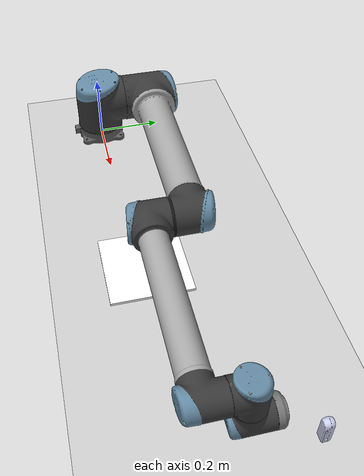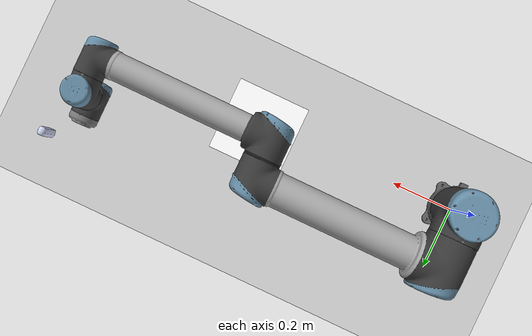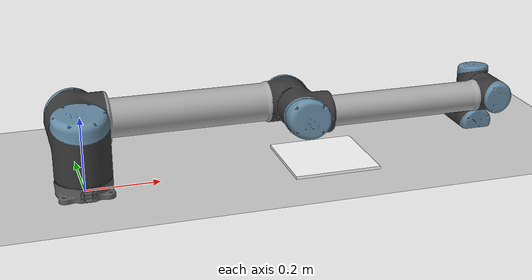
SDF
<sdf version="1.7">
 <world name="default">
  <light name="sun" type="directional">
   <pose>0 0 10 0 -0 0</pose>
   <diffuse>0.8 0.8 0.8 1</diffuse>
   <specular>0.2 0.2 0.2 1</specular>
   <attenuation>
    <range>1000</range>
    <constant>0.9</constant>
    <linear>0.01</linear>
    <quadratic>0.001</quadratic>
   </attenuation>
   <direction>-0.5 0.1 -0.9</direction>
   <spot><inner_angle>0</inner_angle><outer_angle>0</outer_angle><falloff>0</falloff></spot>
  </light>
  <model name="ground_plane">
   <static>1</static>
   <link name="link">
    <collision name="collision">
     <geometry><plane><normal>0 0 1</normal><size>100 100</size></plane></geometry>
     <surface><friction><ode><mu>100</mu><mu2>50</mu2></ode></friction></surface>
    </collision>
    <visual name="visual">
     <cast_shadows>0</cast_shadows>
     <geometry><plane><normal>0 0 1</normal><size>100 100</size></plane></geometry>
     <material>
      <script><uri>file://media/materials/scripts/gazebo.material</uri><name>Gazebo/Grey</name></script>
     </material>
    </visual>
   </link>
  </model>
  <gravity>0 0 -9.8</gravity>
  <magnetic_field>6e-06 2.3e-05 -4.2e-05</magnetic_field>
  <atmosphere type="adiabatic"/>
  <physics type="ode">
   <max_step_size>0.001</max_step_size>
   <real_time_factor>1</real_time_factor>
   <real_time_update_rate>1000</real_time_update_rate>
  </physics>
  <scene><ambient>0.4 0.4 0.4 1</ambient><background>0.7 0.7 0.7 1</background><shadows>1</shadows></scene>
  <audio><device>default</device></audio>
  <spherical_coordinates>
   <surface_model>EARTH_WGS84</surface_model>
   <latitude_deg>0</latitude_deg>
   <longitude_deg>0</longitude_deg>
   <elevation>0</elevation>
   <heading_deg>0</heading_deg>
  </spherical_coordinates>
  <model name="ur10_robot">
   <joint name="virtual_joint" type="fixed">
    <pose relative_to="__model__">0 0 0 0 -0 0</pose>
    <parent>world</parent>
    <child>base_link</child>
   </joint>
   <link name="base_link">
    <pose relative_to="virtual_joint">0 0 0 0 -0 0</pose>
    <inertial>
     <mass>4</mass>
     <inertia>
      <ixx>0.00610633</ixx>
      <ixy>0</ixy>
      <ixz>0</ixz>
      <iyy>0.00610633</iyy>
      <iyz>0</iyz>
      <izz>0.01125</izz>
     </inertia>
    </inertial>
    <collision name="base_link_inertia_collision">
     <geometry>
      <mesh>
       <scale>1 1 1</scale>
       <uri>file:///home/p/ws_demo2/install/ur_description/share/ur_description/meshes/ur10/collision/base.stl</uri>
      </mesh>
     </geometry>
    </collision>
    <visual name="base_link_inertia_visual">
     <geometry>
      <mesh>
       <scale>1 1 1</scale>
       <uri>file:///home/p/ws_demo2/install/ur_description/share/ur_description/meshes/ur10/visual/base.dae</uri>
      </mesh>
     </geometry>
    </visual>
    <gravity>0</gravity>
   </link>
   <joint name="shoulder_pan_joint" type="revolute">
    <pose relative_to="base_link">0 0 0.1273 0 -0 3.14159</pose>
    <parent>base_link</parent>
    <child>shoulder_link</child>
    <axis>
     <xyz>0 0 1</xyz>
     <limit><lower>-6.28319</lower><upper>6.28319</upper><effort>330</effort><velocity>2.0944</velocity></limit>
     <dynamics>
      <damping>0</damping>
      <friction>0</friction>
      <spring_reference>0</spring_reference>
      <spring_stiffness>0</spring_stiffness>
     </dynamics>
    </axis>
    <physics>
     <provide_feedback>0</provide_feedback>
     <ode>
      <implicit_spring_damper>1</implicit_spring_damper>
      <cfm_damping>1</cfm_damping>
      <limit><cfm>0</cfm><erp>0.2</erp></limit>
      <provide_feedback>0</provide_feedback>
     </ode>
    </physics>
   </joint>
   <link name="shoulder_link">
    <pose relative_to="shoulder_pan_joint">0 0 0 0 -0 0</pose>
    <inertial>
     <mass>7.778</mass>
     <inertia>
      <ixx>0.0314743</ixx>
      <ixy>0</ixy>
      <ixz>0</ixz>
      <iyy>0.0314743</iyy>
      <iyz>0</iyz>
      <izz>0.0218756</izz>
     </inertia>
    </inertial>
    <collision name="shoulder_link_collision">
     <pose>0 0 0 0 -0 3.14159</pose>
     <geometry>
      <mesh>
       <scale>1 1 1</scale>
       <uri>file:///home/p/ws_demo2/install/ur_description/share/ur_description/meshes/ur10/collision/shoulder.stl</uri>
      </mesh>
     </geometry>
     <surface><friction><ode><mu>0.61</mu><mu2>0.61</mu2></ode></friction></surface>
    </collision>
    <visual name="shoulder_link_visual">
     <pose>0 0 0 0 -0 3.14159</pose>
     <geometry>
      <mesh>
       <scale>1 1 1</scale>
       <uri>file:///home/p/ws_demo2/install/ur_description/share/ur_description/meshes/ur10/visual/shoulder.dae</uri>
      </mesh>
     </geometry>
    </visual>
    <gravity>0</gravity>
   </link>
   <joint name="shoulder_lift_joint" type="revolute">
    <pose relative_to="shoulder_link">0 0 0 1.5708 -0 0</pose>
    <parent>shoulder_link</parent>
    <child>upper_arm_link</child>
    <axis>
     <xyz>0 0 1</xyz>
     <limit><lower>-6.28319</lower><upper>6.28319</upper><effort>330</effort><velocity>2.0944</velocity></limit>
     <dynamics>
      <damping>0</damping>
      <friction>0</friction>
      <spring_reference>0</spring_reference>
      <spring_stiffness>0</spring_stiffness>
     </dynamics>
    </axis>
    <physics>
     <provide_feedback>0</provide_feedback>
     <ode>
      <implicit_spring_damper>1</implicit_spring_damper>
      <cfm_damping>1</cfm_damping>
      <limit><cfm>0</cfm><erp>0.2</erp></limit>
      <provide_feedback>0</provide_feedback>
     </ode>
    </physics>
   </joint>
   <link name="upper_arm_link">
    <pose relative_to="shoulder_lift_joint">0 0 0 0 -0 0</pose>
    <inertial>
     <pose>-0.306 0 0.175 3.14159 1.57079 3.14159</pose>
     <mass>12.93</mass>
     <inertia>
      <ixx>0.421754</ixx>
      <ixy>0</ixy>
      <ixz>0</ixz>
      <iyy>0.421754</iyy>
      <iyz>0</iyz>
      <izz>0.0363656</izz>
     </inertia>
    </inertial>
    <collision name="upper_arm_link_collision">
     <pose>0 0 0.220941 1.5708 0 -1.5708</pose>
     <geometry>
      <mesh>
       <scale>1 1 1</scale>
       <uri>file:///home/p/ws_demo2/install/ur_description/share/ur_description/meshes/ur10/collision/upperarm.stl</uri>
      </mesh>
     </geometry>
     <surface><friction><ode><mu>0.61</mu><mu2>0.61</mu2></ode></friction></surface>
    </collision>
    <visual name="upper_arm_link_visual">
     <pose>0 0 0.220941 1.5708 0 -1.5708</pose>
     <geometry>
      <mesh>
       <scale>1 1 1</scale>
       <uri>file:///home/p/ws_demo2/install/ur_description/share/ur_description/meshes/ur10/visual/upperarm.dae</uri>
      </mesh>
     </geometry>
    </visual>
    <gravity>0</gravity>
   </link>
   <joint name="elbow_joint" type="revolute">
    <pose relative_to="upper_arm_link">-0.612 0 0 0 -0 0</pose>
    <parent>upper_arm_link</parent>
    <child>forearm_link</child>
    <axis>
     <xyz>0 0 1</xyz>
     <limit><lower>-3.14159</lower><upper>3.14159</upper><effort>150</effort><velocity>3.14159</velocity></limit>
     <dynamics>
      <damping>0</damping>
      <friction>0</friction>
      <spring_reference>0</spring_reference>
      <spring_stiffness>0</spring_stiffness>
     </dynamics>
    </axis>
    <physics>
     <provide_feedback>0</provide_feedback>
     <ode>
      <implicit_spring_damper>1</implicit_spring_damper>
      <cfm_damping>1</cfm_damping>
      <limit><cfm>0</cfm><erp>0.2</erp></limit>
      <provide_feedback>0</provide_feedback>
     </ode>
    </physics>
   </joint>
   <link name="forearm_link">
    <pose relative_to="elbow_joint">0 0 0 0 -0 0</pose>
    <inertial>
     <pose>-0.28615 0 0.049042 3.14159 1.57079 3.14159</pose>
     <mass>3.87</mass>
     <inertia>
      <ixx>0.11107</ixx>
      <ixy>0</ixy>
      <ixz>0</ixz>
      <iyy>0.11107</iyy>
      <iyz>0</iyz>
      <izz>0.0108844</izz>
     </inertia>
    </inertial>
    <collision name="forearm_link_collision">
     <pose>0 0 0.049042 1.5708 0 -1.5708</pose>
     <geometry>
      <mesh>
       <scale>1 1 1</scale>
       <uri>file:///home/p/ws_demo2/install/ur_description/share/ur_description/meshes/ur10/collision/forearm.stl</uri>
      </mesh>
     </geometry>
     <surface><friction><ode><mu>0.61</mu><mu2>0.61</mu2></ode></friction></surface>
    </collision>
    <visual name="forearm_link_visual">
     <pose>0 0 0.049042 1.5708 0 -1.5708</pose>
     <geometry>
      <mesh>
       <scale>1 1 1</scale>
       <uri>file:///home/p/ws_demo2/install/ur_description/share/ur_description/meshes/ur10/visual/forearm.dae</uri>
      </mesh>
     </geometry>
    </visual>
    <gravity>0</gravity>
   </link>
   <joint name="wrist_1_joint" type="revolute">
    <pose relative_to="forearm_link">-0.5723 0 0.163941 0 -0 0</pose>
    <parent>forearm_link</parent>
    <child>wrist_1_link</child>
    <axis>
     <xyz>0 0 1</xyz>
     <limit><lower>-6.28319</lower><upper>6.28319</upper><effort>56</effort><velocity>3.14159</velocity></limit>
     <dynamics>
      <damping>0</damping>
      <friction>0</friction>
      <spring_reference>0</spring_reference>
      <spring_stiffness>0</spring_stiffness>
     </dynamics>
    </axis>
    <physics>
     <provide_feedback>0</provide_feedback>
     <ode>
      <implicit_spring_damper>1</implicit_spring_damper>
      <cfm_damping>1</cfm_damping>
      <limit><cfm>0</cfm><erp>0.2</erp></limit>
      <provide_feedback>0</provide_feedback>
     </ode>
    </physics>
   </joint>
   <link name="wrist_1_link">
    <pose relative_to="wrist_1_joint">0 0 0 0 -0 0</pose>
    <inertial>
     <mass>1.96</mass>
     <inertia>
      <ixx>0.00510825</ixx>
      <ixy>0</ixy>
      <ixz>0</ixz>
      <iyy>0.00510825</iyy>
      <iyz>0</iyz>
      <izz>0.0055125</izz>
     </inertia>
    </inertial>
    <collision name="wrist_1_link_collision">
     <pose>0 0 -0.1149 1.5708 -0 0</pose>
     <geometry>
      <mesh>
       <scale>1 1 1</scale>
       <uri>file:///home/p/ws_demo2/install/ur_description/share/ur_description/meshes/ur10/collision/wrist1.stl</uri>
      </mesh>
     </geometry>
     <surface><friction><ode><mu>0.61</mu><mu2>0.61</mu2></ode></friction></surface>
    </collision>
    <visual name="wrist_1_link_visual">
     <pose>0 0 -0.1149 1.5708 -0 0</pose>
     <geometry>
      <mesh>
       <scale>1 1 1</scale>
       <uri>file:///home/p/ws_demo2/install/ur_description/share/ur_description/meshes/ur10/visual/wrist1.dae</uri>
      </mesh>
     </geometry>
    </visual>
    <gravity>0</gravity>
   </link>
   <joint name="wrist_2_joint" type="revolute">
    <pose relative_to="wrist_1_link">0 -0.1157 -0 1.5708 -0 0</pose>
    <parent>wrist_1_link</parent>
    <child>wrist_2_link</child>
    <axis>
     <xyz>0 0 1</xyz>
     <limit><lower>-6.28319</lower><upper>6.28319</upper><effort>56</effort><velocity>3.14159</velocity></limit>
     <dynamics>
      <damping>0</damping>
      <friction>0</friction>
      <spring_reference>0</spring_reference>
      <spring_stiffness>0</spring_stiffness>
     </dynamics>
    </axis>
    <physics>
     <provide_feedback>0</provide_feedback>
     <ode>
      <implicit_spring_damper>1</implicit_spring_damper>
      <cfm_damping>1</cfm_damping>
      <limit><cfm>0</cfm><erp>0.2</erp></limit>
      <provide_feedback>0</provide_feedback>
     </ode>
    </physics>
   </joint>
   <link name="wrist_2_link">
    <pose relative_to="wrist_2_joint">0 0 0 0 -0 0</pose>
    <inertial>
     <mass>1.96</mass>
     <inertia>
      <ixx>0.00407925</ixx>
      <ixy>0</ixy>
      <ixz>0</ixz>
      <iyy>0.00407925</iyy>
      <iyz>0</iyz>
      <izz>0.0055125</izz>
     </inertia>
    </inertial>
    <collision name="wrist_2_link_collision">
     <pose>0 0 -0.1158 0 -0 0</pose>
     <geometry>
      <mesh>
       <scale>1 1 1</scale>
       <uri>file:///home/p/ws_demo2/install/ur_description/share/ur_description/meshes/ur10/collision/wrist2.stl</uri>
      </mesh>
     </geometry>
     <surface><friction><ode><mu>0.61</mu><mu2>0.61</mu2></ode></friction></surface>
    </collision>
    <visual name="wrist_2_link_visual">
     <pose>0 0 -0.1158 0 -0 0</pose>
     <geometry>
      <mesh>
       <scale>1 1 1</scale>
       <uri>file:///home/p/ws_demo2/install/ur_description/share/ur_description/meshes/ur10/visual/wrist2.dae</uri>
      </mesh>
     </geometry>
    </visual>
    <gravity>0</gravity>
   </link>
   <joint name="wrist_3_joint" type="revolute">
    <pose relative_to="wrist_2_link">0 0.0922 -0 -1.5708 0 0</pose>
    <parent>wrist_2_link</parent>
    <child>wrist_3_link</child>
    <axis>
     <xyz>0 0 1</xyz>
     <limit><lower>-6.28319</lower><upper>6.28319</upper><effort>56</effort><velocity>3.14159</velocity></limit>
     <dynamics>
      <damping>0</damping>
      <friction>0</friction>
      <spring_reference>0</spring_reference>
      <spring_stiffness>0</spring_stiffness>
     </dynamics>
    </axis>
    <physics>
     <provide_feedback>0</provide_feedback>
     <ode>
      <implicit_spring_damper>1</implicit_spring_damper>
      <cfm_damping>1</cfm_damping>
      <limit><cfm>0</cfm><erp>0.2</erp></limit>
      <provide_feedback>0</provide_feedback>
     </ode>
    </physics>
   </joint>
   <link name="wrist_3_link">
    <pose relative_to="wrist_3_joint">0 0 0 0 -0 0</pose>
    <inertial>
     <pose>0 0 -0.01525 0 -0 0</pose>
     <mass>0.202</mass>
     <inertia>
      <ixx>0.000117922</ixx>
      <ixy>0</ixy>
      <ixz>0</ixz>
      <iyy>0.000117922</iyy>
      <iyz>0</iyz>
      <izz>0.000204525</izz>
     </inertia>
    </inertial>
    <collision name="wrist_3_link_collision">
     <pose>0 0 -0.0922 1.5708 -0 0</pose>
     <geometry>
      <mesh>
       <scale>1 1 1</scale>
       <uri>file:///home/p/ws_demo2/install/ur_description/share/ur_description/meshes/ur10/collision/wrist3.stl</uri>
      </mesh>
     </geometry>
     <surface><friction><ode><mu>0.61</mu><mu2>0.61</mu2></ode></friction></surface>
    </collision>
    <collision name="wrist_3_link_fixed_joint_lump__kinect_link_collision_1">
     <pose>-0.08 -0 0.08 0 0 -1.5708</pose>
     <geometry><box><size>0.0001 0.0001 0.0001</size></box></geometry>
    </collision>
    <visual name="wrist_3_link_visual">
     <pose>0 0 -0.0922 1.5708 -0 0</pose>
     <geometry>
      <mesh>
       <scale>1 1 1</scale>
       <uri>file:///home/p/ws_demo2/install/ur_description/share/ur_description/meshes/ur10/visual/wrist3.dae</uri>
      </mesh>
     </geometry>
    </visual>
    <visual name="wrist_3_link_fixed_joint_lump__kinect_link_visual_1">
     <pose>-0.08 -0 0.08 0 0 -1.5708</pose>
     <geometry>
      <mesh>
       <scale>0.001 0.001 0.001</scale>
       <uri>file:///home/p/ws_demo2/install/ur_description/share/ur_description/meshes/ur10/visual/d455.dae</uri>
      </mesh>
     </geometry>
    </visual>
    <gravity>0</gravity>
    <sensor name="kinect" type="depth">
     <always_on>1</always_on>
     <update_rate>30</update_rate>
     <camera name="kinect">
      <horizontal_fov>1.0472</horizontal_fov>
      <image><format>R8G8B8</format><width>640</width><height>480</height></image>
      <clip><near>0.01</near><far>8</far></clip>
     </camera>
     <plugin name="kinect_controller" filename="libgazebo_ros_camera.so">
      <ros>
       <remapping>kinect/image_raw:=rgb/image_raw</remapping>
       <remapping>kinect/depth/image_raw:=depth/image_raw</remapping>
       <remapping>kinect/camera_info:=rgb/camera_info</remapping>
       <remapping>kinect/depth/camera_info:=depth/camera_info</remapping>
       <remapping>kinect/points:=depth/points</remapping>
      </ros>
      <camera_name>kinect</camera_name>
      <frame_name>kinect_link</frame_name>
      <hack_baseline>0.07</hack_baseline>
      <min_depth>0.01</min_depth>
      <max_depth>300.0</max_depth>
     </plugin>
     <pose>-0.08 -0 0.08 3.14159 -1.56989 3.14159</pose>
    </sensor>
   </link>
   <static>0</static>
   <plugin name="gazebo_ros2_control" filename="libgazebo_ros2_control.so">
    <parameters>/home/p/ws_demo2/install/ur_description/share/ur_description/config/ur10_gazebo_controllers.yaml</parameters>
   </plugin>
  </model>
  <model name="number1">
   <link name="link">
    <pose>-1.9792 1.46974 -0.246833 0 -0 0</pose>
    <inertial>
     <mass>1</mass>
     <inertia><ixx>1</ixx><ixy>0</ixy><ixz>0</ixz><iyy>1</iyy><iyz>0</iyz><izz>1</izz></inertia>
    </inertial>
    <visual name="visual">
     <geometry><mesh><uri>model://number1/meshes/number.dae</uri><scale>0.3 0.3 0.01</scale></mesh></geometry>
     <material>
      <script>
       <uri>model://number1/materials/scripts</uri>
       <uri>model://number1/materials/textures</uri>
       <name>Number/One</name>
      </script>
      <shader type="pixel"><normal_map>__default__</normal_map></shader>
      <ambient>1 1 1 1</ambient>
      <diffuse>1 1 1 1</diffuse>
      <specular>0 0 0 1</specular>
      <emissive>0 0 0 1</emissive>
     </material>
    </visual>
   </link>
   <static>1</static>
   <pose>2.64493 -1.44475 0.25 0 -0 0</pose>
  </model>
 </world>
</sdf>
